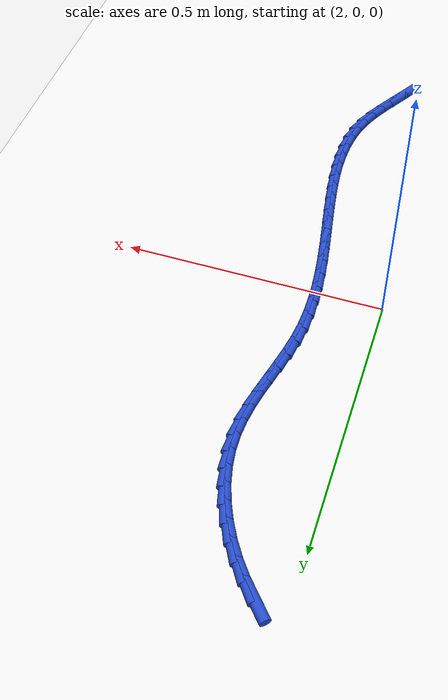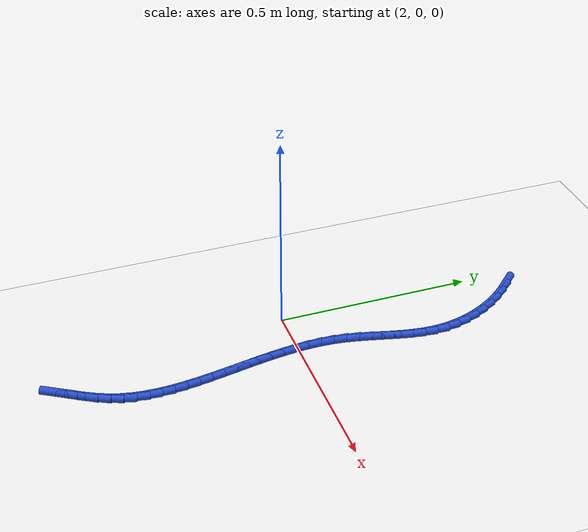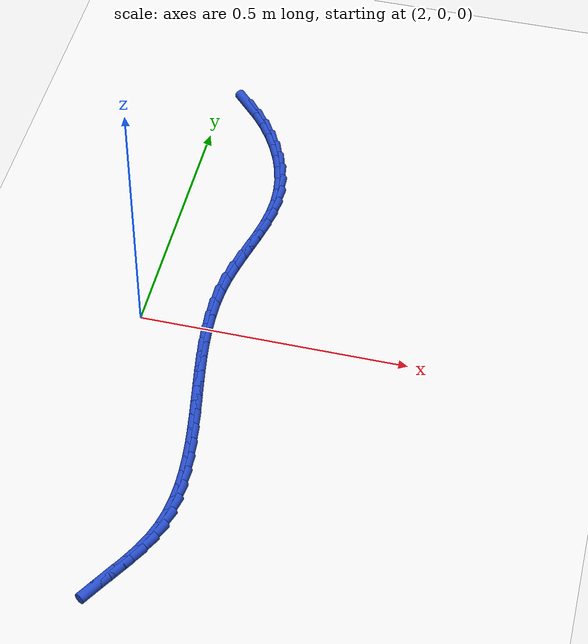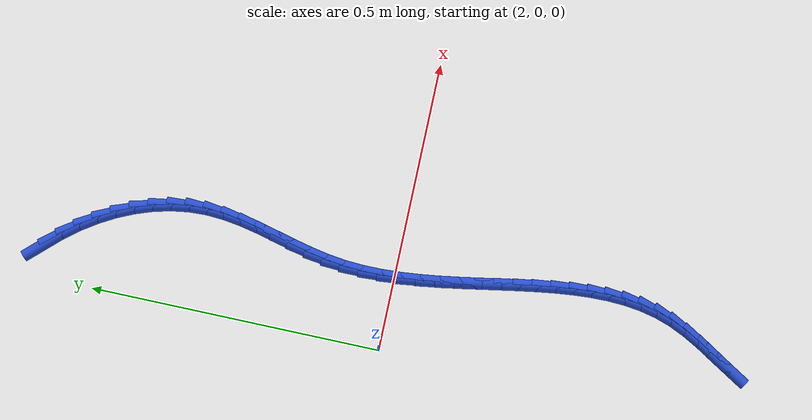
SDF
<sdf version="1.6">
 <world name="default">
  <model name="ground_plane">
   <static>1</static>
   <link name="link">
    <collision name="collision">
     <geometry><plane><normal>0 0 1</normal><size>100 100</size></plane></geometry>
     <surface><friction><ode><mu>100</mu><mu2>50</mu2></ode></friction></surface>
    </collision>
    <visual name="visual">
     <cast_shadows>0</cast_shadows>
     <geometry><plane><normal>0 0 1</normal><size>100 100</size></plane></geometry>
     <material>
      <script><uri>file://media/materials/scripts/gazebo.material</uri><name>Gazebo/WhiteGlow</name></script>
     </material>
    </visual>
   </link>
  </model>
  <model name="line">
   <link name="link_96">
    <pose>2.0560990488442976 0.5950754106253499 0.01 0 1.57 -0.817708057792359</pose>
    <collision name="collision">
     <geometry><cylinder><radius>0.01</radius><length>0.08</length></cylinder></geometry>
    </collision>
    <visual name="visual">
     <material>
      <script><name>Gazebo/Blue</name><uri>file://media/materials/scripts/gazebo.material</uri></script>
     </material>
     <geometry><cylinder><radius>0.01</radius><length>0.08</length></cylinder></geometry>
    </visual>
   </link>
   <link name="link_97">
    <pose>2.078957514678533 0.5706899676992521 0.01 0 1.57 -0.8964327851356276</pose>
    <collision name="collision">
     <geometry><cylinder><radius>0.01</radius><length>0.08</length></cylinder></geometry>
    </collision>
    <visual name="visual">
     <material>
      <script><name>Gazebo/Blue</name><uri>file://media/materials/scripts/gazebo.material</uri></script>
     </material>
     <geometry><cylinder><radius>0.01</radius><length>0.08</length></cylinder></geometry>
    </visual>
   </link>
   <link name="link_98">
    <pose>2.099762319113103 0.5446638325625419 0.01 0 1.57 -0.975677377423219</pose>
    <collision name="collision">
     <geometry><cylinder><radius>0.01</radius><length>0.08</length></cylinder></geometry>
    </collision>
    <visual name="visual">
     <material>
      <script><name>Gazebo/Blue</name><uri>file://media/materials/scripts/gazebo.material</uri></script>
     </material>
     <geometry><cylinder><radius>0.01</radius><length>0.08</length></cylinder></geometry>
    </visual>
   </link>
   <link name="link_99">
    <pose>2.118334529392866 0.5172305279129862 0.01 0 1.57 -1.0565692540533904</pose>
    <collision name="collision">
     <geometry><cylinder><radius>0.01</radius><length>0.08</length></cylinder></geometry>
    </collision>
    <visual name="visual">
     <material>
      <script><name>Gazebo/Blue</name><uri>file://media/materials/scripts/gazebo.material</uri></script>
     </material>
     <geometry><cylinder><radius>0.01</radius><length>0.08</length></cylinder></geometry>
    </visual>
   </link>
   <link name="link_100">
    <pose>2.134495212762681 0.48862357644835097 0.01 0 1.57 -1.1402563967097188</pose>
    <collision name="collision">
     <geometry><cylinder><radius>0.01</radius><length>0.08</length></cylinder></geometry>
    </collision>
    <visual name="visual">
     <material>
      <script><name>Gazebo/Blue</name><uri>file://media/materials/scripts/gazebo.material</uri></script>
     </material>
     <geometry><cylinder><radius>0.01</radius><length>0.08</length></cylinder></geometry>
    </visual>
   </link>
   <link name="link_101">
    <pose>2.1480654364674074 0.4590765008664042 0.01 0 1.57 -1.2278912144648775</pose>
    <collision name="collision">
     <geometry><cylinder><radius>0.01</radius><length>0.08</length></cylinder></geometry>
    </collision>
    <visual name="visual">
     <material>
      <script><name>Gazebo/Blue</name><uri>file://media/materials/scripts/gazebo.material</uri></script>
     </material>
     <geometry><cylinder><radius>0.01</radius><length>0.08</length></cylinder></geometry>
    </visual>
   </link>
   <link name="link_102">
    <pose>2.1588662677519044 0.4288228238649121 0.01 0 1.57 -1.3205923275127904</pose>
    <collision name="collision">
     <geometry><cylinder><radius>0.01</radius><length>0.08</length></cylinder></geometry>
    </collision>
    <visual name="visual">
     <material>
      <script><name>Gazebo/Blue</name><uri>file://media/materials/scripts/gazebo.material</uri></script>
     </material>
     <geometry><cylinder><radius>0.01</radius><length>0.08</length></cylinder></geometry>
    </visual>
   </link>
   <link name="link_103">
    <pose>2.166718773861031 0.3980960681416416 0.01 0 1.57 -1.419371225481341</pose>
    <collision name="collision">
     <geometry><cylinder><radius>0.01</radius><length>0.08</length></cylinder></geometry>
    </collision>
    <visual name="visual">
     <material>
      <script><name>Gazebo/Blue</name><uri>file://media/materials/scripts/gazebo.material</uri></script>
     </material>
     <geometry><cylinder><radius>0.01</radius><length>0.08</length></cylinder></geometry>
    </visual>
   </link>
   <link name="link_104">
    <pose>2.1714440220396467 0.36712975639435896 0.01 0 1.57 -1.5250031579476853</pose>
    <collision name="collision">
     <geometry><cylinder><radius>0.01</radius><length>0.08</length></cylinder></geometry>
    </collision>
    <visual name="visual">
     <material>
      <script><name>Gazebo/Blue</name><uri>file://media/materials/scripts/gazebo.material</uri></script>
     </material>
     <geometry><cylinder><radius>0.01</radius><length>0.08</length></cylinder></geometry>
    </visual>
   </link>
   <link name="link_105">
    <pose>2.1728633400599855 0.336157325194466 0.01 0 1.57 1.510962576299545</pose>
    <collision name="collision">
     <geometry><cylinder><radius>0.01</radius><length>0.08</length></cylinder></geometry>
    </collision>
    <visual name="visual">
     <material>
      <script><name>Gazebo/Blue</name><uri>file://media/materials/scripts/gazebo.material</uri></script>
     </material>
     <geometry><cylinder><radius>0.01</radius><length>0.08</length></cylinder></geometry>
    </visual>
   </link>
   <link name="link_106">
    <pose>2.1710172061256854 0.3053397633324465 0.01 0 1.57 1.4267557697607407</pose>
    <collision name="collision">
     <geometry><cylinder><radius>0.01</radius><length>0.08</length></cylinder></geometry>
    </collision>
    <visual name="visual">
     <material>
      <script><name>Gazebo/Blue</name><uri>file://media/materials/scripts/gazebo.material</uri></script>
     </material>
     <geometry><cylinder><radius>0.01</radius><length>0.08</length></cylinder></geometry>
    </visual>
   </link>
   <link name="link_107">
    <pose>2.166563481260516 0.2746339622807546 0.01 0 1.57 1.3683601955182454</pose>
    <collision name="collision">
     <geometry><cylinder><radius>0.01</radius><length>0.08</length></cylinder></geometry>
    </collision>
    <visual name="visual">
     <material>
      <script><name>Gazebo/Blue</name><uri>file://media/materials/scripts/gazebo.material</uri></script>
     </material>
     <geometry><cylinder><radius>0.01</radius><length>0.08</length></cylinder></geometry>
    </visual>
   </link>
   <link name="link_108">
    <pose>2.1602679587952913 0.2439611327418599 0.01 0 1.57 1.3352805454289876</pose>
    <collision name="collision">
     <geometry><cylinder><radius>0.01</radius><length>0.08</length></cylinder></geometry>
    </collision>
    <visual name="visual">
     <material>
      <script><name>Gazebo/Blue</name><uri>file://media/materials/scripts/gazebo.material</uri></script>
     </material>
     <geometry><cylinder><radius>0.01</radius><length>0.08</length></cylinder></geometry>
    </visual>
   </link>
   <link name="link_109">
    <pose>2.1528964320608264 0.21324248541823365 0.01 0 1.57 1.3267051071150895</pose>
    <collision name="collision">
     <geometry><cylinder><radius>0.01</radius><length>0.08</length></cylinder></geometry>
    </collision>
    <visual name="visual">
     <material>
      <script><name>Gazebo/Blue</name><uri>file://media/materials/scripts/gazebo.material</uri></script>
     </material>
     <geometry><cylinder><radius>0.01</radius><length>0.08</length></cylinder></geometry>
    </visual>
   </link>
   <link name="link_110">
    <pose>2.1452146943879358 0.18239923101234587 0.01 0 1.57 1.3421162332591428</pose>
    <collision name="collision">
     <geometry><cylinder><radius>0.01</radius><length>0.08</length></cylinder></geometry>
    </collision>
    <visual name="visual">
     <material>
      <script><name>Gazebo/Blue</name><uri>file://media/materials/scripts/gazebo.material</uri></script>
     </material>
     <geometry><cylinder><radius>0.01</radius><length>0.08</length></cylinder></geometry>
    </visual>
   </link>
   <link name="link_111">
    <pose>2.1379885391074342 0.15135258022666676 0.01 0 1.57 1.3814236320363413</pose>
    <collision name="collision">
     <geometry><cylinder><radius>0.01</radius><length>0.08</length></cylinder></geometry>
    </collision>
    <visual name="visual">
     <material>
      <script><name>Gazebo/Blue</name><uri>file://media/materials/scripts/gazebo.material</uri></script>
     </material>
     <geometry><cylinder><radius>0.01</radius><length>0.08</length></cylinder></geometry>
    </visual>
   </link>
   <link name="link_112">
    <pose>2.131983759550138 0.12002374376366633 0.01 0 1.57 1.4442325471523785</pose>
    <collision name="collision">
     <geometry><cylinder><radius>0.01</radius><length>0.08</length></cylinder></geometry>
    </collision>
    <visual name="visual">
     <material>
      <script><name>Gazebo/Blue</name><uri>file://media/materials/scripts/gazebo.material</uri></script>
     </material>
     <geometry><cylinder><radius>0.01</radius><length>0.08</length></cylinder></geometry>
    </visual>
   </link>
   <link name="link_113">
    <pose>2.127951684272092 0.08833598013236109 0.01 0 1.57 1.5155163079960887</pose>
    <collision name="collision">
     <geometry><cylinder><radius>0.01</radius><length>0.08</length></cylinder></geometry>
    </collision>
    <visual name="visual">
     <material>
      <script><name>Gazebo/Blue</name><uri>file://media/materials/scripts/gazebo.material</uri></script>
     </material>
     <geometry><cylinder><radius>0.01</radius><length>0.08</length></cylinder></geometry>
    </visual>
   </link>
   <link name="link_114">
    <pose>2.1261777391759806 0.05627850659456394 0.01 0 1.57 -1.56415494315072</pose>
    <collision name="collision">
     <geometry><cylinder><radius>0.01</radius><length>0.08</length></cylinder></geometry>
    </collision>
    <visual name="visual">
     <material>
      <script><name>Gazebo/Blue</name><uri>file://media/materials/scripts/gazebo.material</uri></script>
     </material>
     <geometry><cylinder><radius>0.01</radius><length>0.08</length></cylinder></geometry>
    </visual>
   </link>
   <link name="link_115">
    <pose>2.126392653769609 0.023919069869095463 0.01 0 1.57 -1.5124959422968918</pose>
    <collision name="collision">
     <geometry><cylinder><radius>0.01</radius><length>0.08</length></cylinder></geometry>
    </collision>
    <visual name="visual">
     <material>
      <script><name>Gazebo/Blue</name><uri>file://media/materials/scripts/gazebo.material</uri></script>
     </material>
     <geometry><cylinder><radius>0.01</radius><length>0.08</length></cylinder></geometry>
    </visual>
   </link>
   <link name="link_116">
    <pose>2.1282947644586665 -0.008669997370196112 0.01 0 1.57 -1.470734427721992</pose>
    <collision name="collision">
     <geometry><cylinder><radius>0.01</radius><length>0.08</length></cylinder></geometry>
    </collision>
    <visual name="visual">
     <material>
      <script><name>Gazebo/Blue</name><uri>file://media/materials/scripts/gazebo.material</uri></script>
     </material>
     <geometry><cylinder><radius>0.01</radius><length>0.08</length></cylinder></geometry>
    </visual>
   </link>
   <link name="link_117">
    <pose>2.1315824076488403 -0.04141636244946405 0.01 0 1.57 -1.4384243170547444</pose>
    <collision name="collision">
     <geometry><cylinder><radius>0.01</radius><length>0.08</length></cylinder></geometry>
    </collision>
    <visual name="visual">
     <material>
      <script><name>Gazebo/Blue</name><uri>file://media/materials/scripts/gazebo.material</uri></script>
     </material>
     <geometry><cylinder><radius>0.01</radius><length>0.08</length></cylinder></geometry>
    </visual>
   </link>
   <link name="link_118">
    <pose>2.135953919745819 -0.07424769269486113 0.01 0 1.57 -1.4151502913228882</pose>
    <collision name="collision">
     <geometry><cylinder><radius>0.01</radius><length>0.08</length></cylinder></geometry>
    </collision>
    <visual name="visual">
     <material>
      <script><name>Gazebo/Blue</name><uri>file://media/materials/scripts/gazebo.material</uri></script>
     </material>
     <geometry><cylinder><radius>0.01</radius><length>0.08</length></cylinder></geometry>
    </visual>
   </link>
   <link name="link_119">
    <pose>2.141107637155291 -0.10709165543254048 0.01 0 1.57 -1.400600281719269</pose>
    <collision name="collision">
     <geometry><cylinder><radius>0.01</radius><length>0.08</length></cylinder></geometry>
    </collision>
    <visual name="visual">
     <material>
      <script><name>Gazebo/Blue</name><uri>file://media/materials/scripts/gazebo.material</uri></script>
     </material>
     <geometry><cylinder><radius>0.01</radius><length>0.08</length></cylinder></geometry>
    </visual>
   </link>
   <link name="link_120">
    <pose>2.1467418962829448 -0.1398759179886541 0.01 0 1.57 -1.3946104122194714</pose>
    <collision name="collision">
     <geometry><cylinder><radius>0.01</radius><length>0.08</length></cylinder></geometry>
    </collision>
    <visual name="visual">
     <material>
      <script><name>Gazebo/Blue</name><uri>file://media/materials/scripts/gazebo.material</uri></script>
     </material>
     <geometry><cylinder><radius>0.01</radius><length>0.08</length></cylinder></geometry>
    </visual>
   </link>
   <link name="link_121">
    <pose>2.1525550335344685 -0.17252814768935507 0.01 0 1.57 -1.3971925791715514</pose>
    <collision name="collision">
     <geometry><cylinder><radius>0.01</radius><length>0.08</length></cylinder></geometry>
    </collision>
    <visual name="visual">
     <material>
      <script><name>Gazebo/Blue</name><uri>file://media/materials/scripts/gazebo.material</uri></script>
     </material>
     <geometry><cylinder><radius>0.01</radius><length>0.08</length></cylinder></geometry>
    </visual>
   </link>
   <link name="link_122">
    <pose>2.158245385315551 -0.20497601186079625 0.01 0 1.57 -1.4085511726869353</pose>
    <collision name="collision">
     <geometry><cylinder><radius>0.01</radius><length>0.08</length></cylinder></geometry>
    </collision>
    <visual name="visual">
     <material>
      <script><name>Gazebo/Blue</name><uri>file://media/materials/scripts/gazebo.material</uri></script>
     </material>
     <geometry><cylinder><radius>0.01</radius><length>0.08</length></cylinder></geometry>
    </visual>
   </link>
   <link name="link_123">
    <pose>2.16351128803188 -0.23714717782913033 0.01 0 1.57 -1.429091114249286</pose>
    <collision name="collision">
     <geometry><cylinder><radius>0.01</radius><length>0.08</length></cylinder></geometry>
    </collision>
    <visual name="visual">
     <material>
      <script><name>Gazebo/Blue</name><uri>file://media/materials/scripts/gazebo.material</uri></script>
     </material>
     <geometry><cylinder><radius>0.01</radius><length>0.08</length></cylinder></geometry>
    </visual>
   </link>
   <link name="link_124">
    <pose>2.168051078089144 -0.26896931292051013 0.01 0 1.57 -1.4594143977589098</pose>
    <collision name="collision">
     <geometry><cylinder><radius>0.01</radius><length>0.08</length></cylinder></geometry>
    </collision>
    <visual name="visual">
     <material>
      <script><name>Gazebo/Blue</name><uri>file://media/materials/scripts/gazebo.material</uri></script>
     </material>
     <geometry><cylinder><radius>0.01</radius><length>0.08</length></cylinder></geometry>
    </visual>
   </link>
   <link name="link_125">
    <pose>2.1715630918930326 -0.30037008446108926 0.01 0 1.57 -1.5002960698334835</pose>
    <collision name="collision">
     <geometry><cylinder><radius>0.01</radius><length>0.08</length></cylinder></geometry>
    </collision>
    <visual name="visual">
     <material>
      <script><name>Gazebo/Blue</name><uri>file://media/materials/scripts/gazebo.material</uri></script>
     </material>
     <geometry><cylinder><radius>0.01</radius><length>0.08</length></cylinder></geometry>
    </visual>
   </link>
   <link name="link_126">
    <pose>2.1737456658492325 -0.33127715977701877 0.01 0 1.57 -1.5526226029466716</pose>
    <collision name="collision">
     <geometry><cylinder><radius>0.01</radius><length>0.08</length></cylinder></geometry>
    </collision>
    <visual name="visual">
     <material>
      <script><name>Gazebo/Blue</name><uri>file://media/materials/scripts/gazebo.material</uri></script>
     </material>
     <geometry><cylinder><radius>0.01</radius><length>0.08</length></cylinder></geometry>
    </visual>
   </link>
   <link name="link_127">
    <pose>2.1742971363634322 -0.3616182061944522 0.01 0 1.57 1.524325710603614</pose>
    <collision name="collision">
     <geometry><cylinder><radius>0.01</radius><length>0.08</length></cylinder></geometry>
    </collision>
    <visual name="visual">
     <material>
      <script><name>Gazebo/Blue</name><uri>file://media/materials/scripts/gazebo.material</uri></script>
     </material>
     <geometry><cylinder><radius>0.01</radius><length>0.08</length></cylinder></geometry>
    </visual>
   </link>
   <link name="link_128">
    <pose>2.1729158398413215 -0.39132089103954254 0.01 0 1.57 1.4467222616101025</pose>
    <collision name="collision">
     <geometry><cylinder><radius>0.01</radius><length>0.08</length></cylinder></geometry>
    </collision>
    <visual name="visual">
     <material>
      <script><name>Gazebo/Blue</name><uri>file://media/materials/scripts/gazebo.material</uri></script>
     </material>
     <geometry><cylinder><radius>0.01</radius><length>0.08</length></cylinder></geometry>
    </visual>
   </link>
   <link name="link_129">
    <pose>2.169300112688588 -0.4203128816384424 0.01 0 1.57 1.3560777620144706</pose>
    <collision name="collision">
     <geometry><cylinder><radius>0.01</radius><length>0.08</length></cylinder></geometry>
    </collision>
    <visual name="visual">
     <material>
      <script><name>Gazebo/Blue</name><uri>file://media/materials/scripts/gazebo.material</uri></script>
     </material>
     <geometry><cylinder><radius>0.01</radius><length>0.08</length></cylinder></geometry>
    </visual>
   </link>
   <link name="link_130">
    <pose>2.163148291310919 -0.44852184531730444 0.01 0 1.57 1.25333921886486</pose>
    <collision name="collision">
     <geometry><cylinder><radius>0.01</radius><length>0.08</length></cylinder></geometry>
    </collision>
    <visual name="visual">
     <material>
      <script><name>Gazebo/Blue</name><uri>file://media/materials/scripts/gazebo.material</uri></script>
     </material>
     <geometry><cylinder><radius>0.01</radius><length>0.08</length></cylinder></geometry>
    </visual>
   </link>
   <link name="link_131">
    <pose>2.1541603971921304 -0.4758764557849748 0.01 0 1.57 1.1519454015052977</pose>
    <collision name="collision">
     <geometry><cylinder><radius>0.01</radius><length>0.08</length></cylinder></geometry>
    </collision>
    <visual name="visual">
     <material>
      <script><name>Gazebo/Blue</name><uri>file://media/materials/scripts/gazebo.material</uri></script>
     </material>
     <geometry><cylinder><radius>0.01</radius><length>0.08</length></cylinder></geometry>
    </visual>
   </link>
   <link name="link_132">
    <pose>2.142319192322057 -0.502474248447312 0.01 0 1.57 1.078182713461375</pose>
    <collision name="collision">
     <geometry><cylinder><radius>0.01</radius><length>0.08</length></cylinder></geometry>
    </collision>
    <visual name="visual">
     <material>
      <script><name>Gazebo/Blue</name><uri>file://media/materials/scripts/gazebo.material</uri></script>
     </material>
     <geometry><cylinder><radius>0.01</radius><length>0.08</length></cylinder></geometry>
    </visual>
   </link>
   <link name="link_133">
    <pose>2.128205105401384 -0.5287697044356421 0.01 0 1.57 1.0349746660576609</pose>
    <collision name="collision">
     <geometry><cylinder><radius>0.01</radius><length>0.08</length></cylinder></geometry>
    </collision>
    <visual name="visual">
     <material>
      <script><name>Gazebo/Blue</name><uri>file://media/materials/scripts/gazebo.material</uri></script>
     </material>
     <geometry><cylinder><radius>0.01</radius><length>0.08</length></cylinder></geometry>
    </visual>
   </link>
   <link name="link_134">
    <pose>2.1124745311206174 -0.5552626742064626 0.01 0 1.57 1.0202583912017733</pose>
    <collision name="collision">
     <geometry><cylinder><radius>0.01</radius><length>0.08</length></cylinder></geometry>
    </collision>
    <visual name="visual">
     <material>
      <script><name>Gazebo/Blue</name><uri>file://media/materials/scripts/gazebo.material</uri></script>
     </material>
     <geometry><cylinder><radius>0.01</radius><length>0.08</length></cylinder></geometry>
    </visual>
   </link>
   <link name="link_135">
    <pose>2.095783864170261 -0.5824530082162702 0.01 0 1.57 1.0313659441754355</pose>
    <collision name="collision">
     <geometry><cylinder><radius>0.01</radius><length>0.08</length></cylinder></geometry>
    </collision>
    <visual name="visual">
     <material>
      <script><name>Gazebo/Blue</name><uri>file://media/materials/scripts/gazebo.material</uri></script>
     </material>
     <geometry><cylinder><radius>0.01</radius><length>0.08</length></cylinder></geometry>
    </visual>
   </link>
  </model>
 </world>
</sdf>
